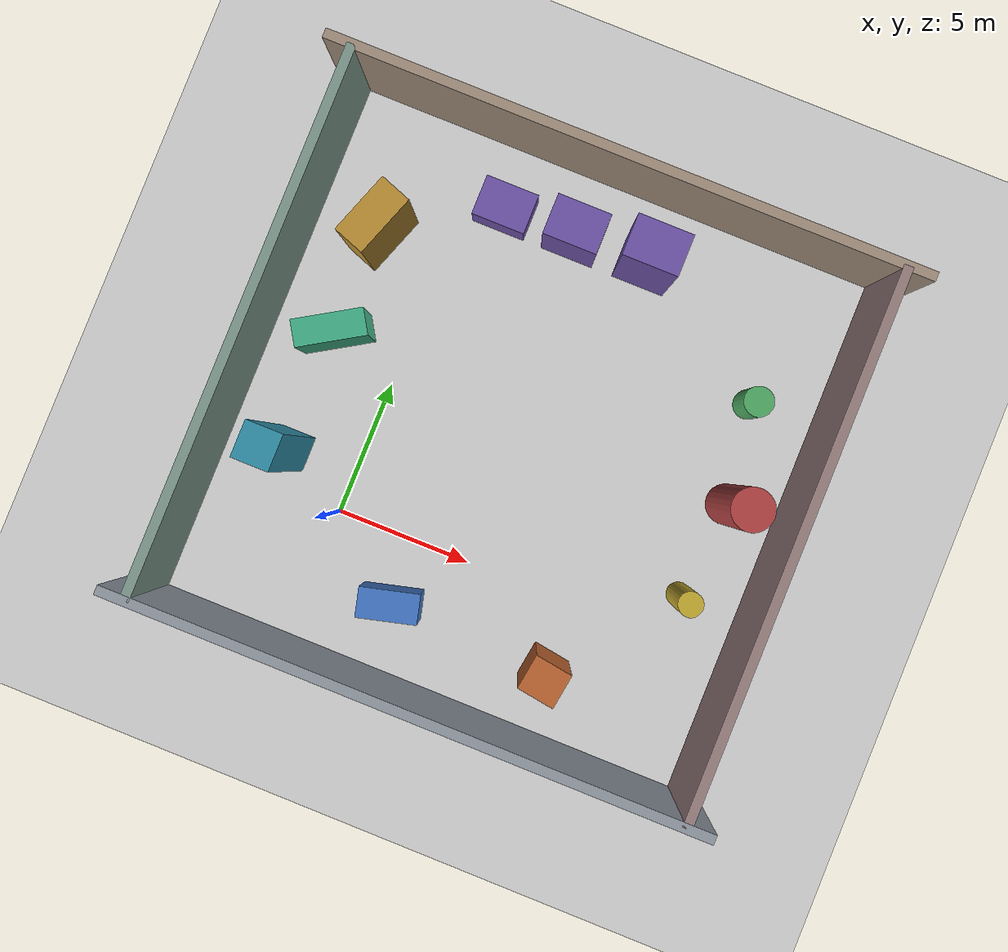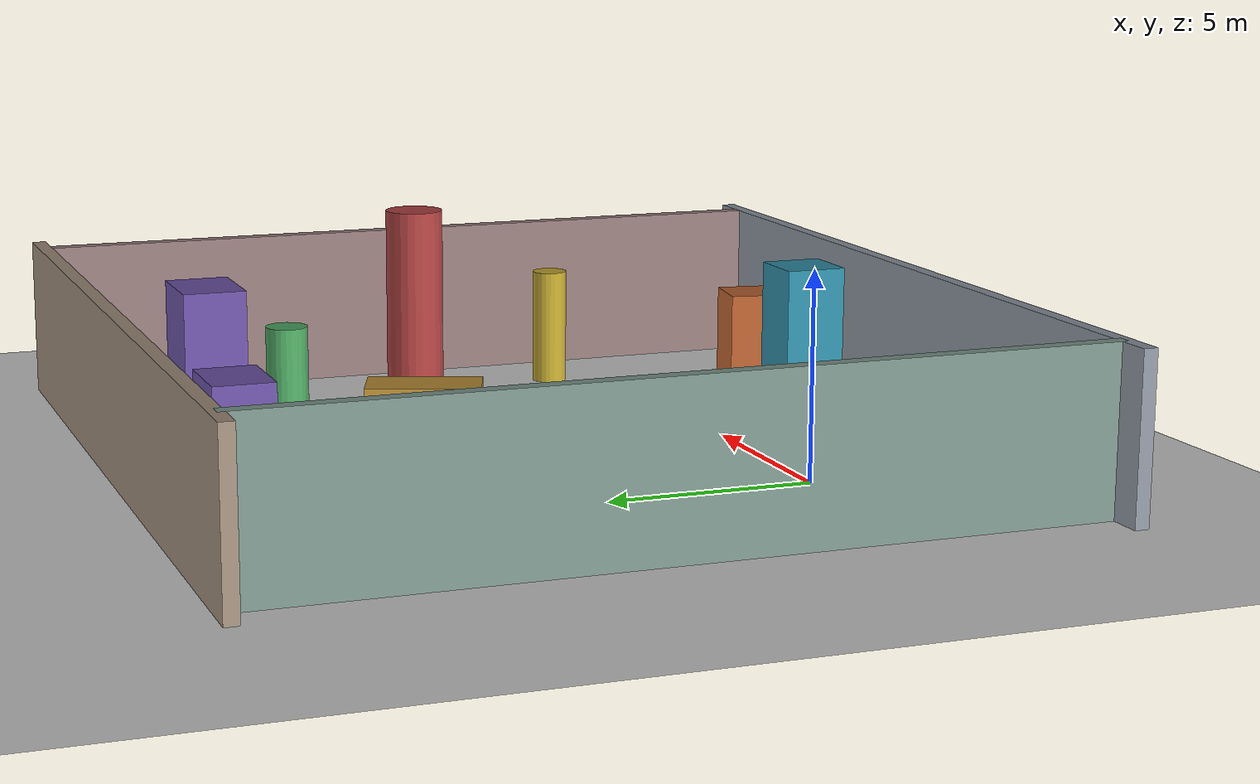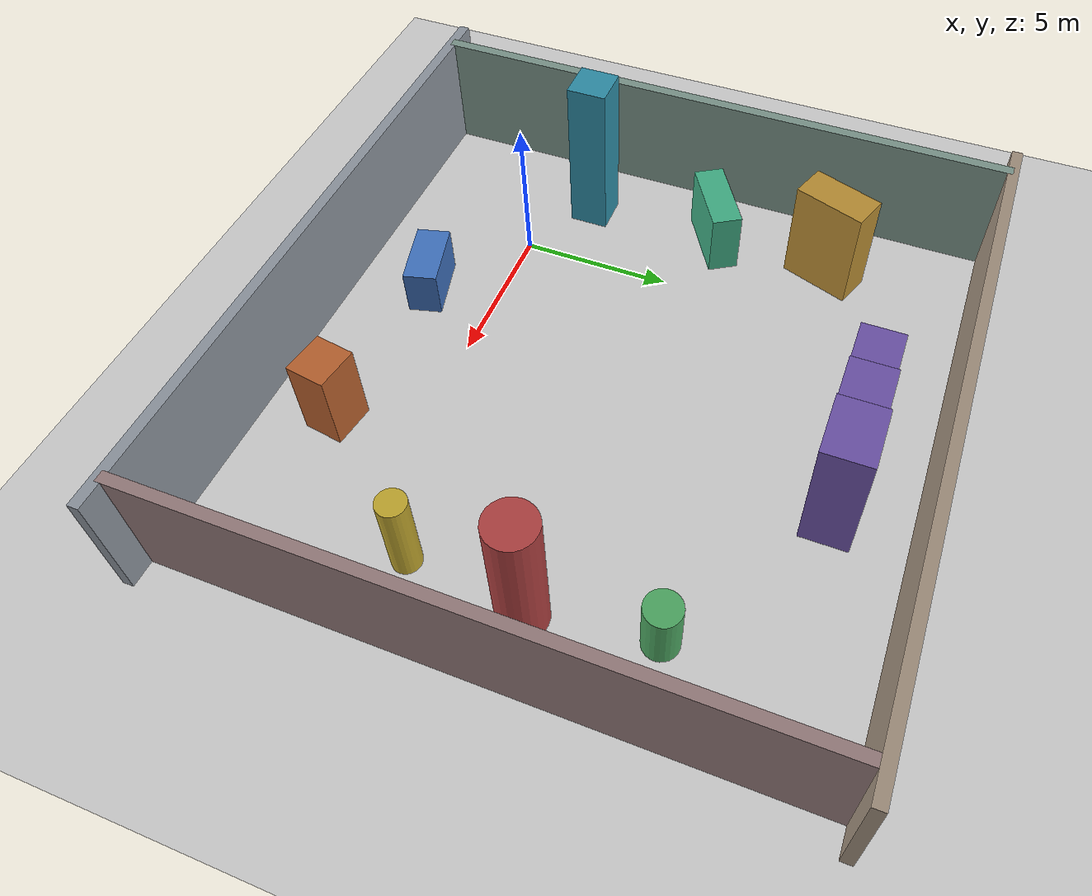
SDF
<?xml version="1.0" ?>
<sdf version="1.6">
  <world name="loop_closure_arena">
    <include><uri>model://sun</uri></include>
    <include><uri>model://ground_plane</uri></include>
    <physics name="default_physics" type="ode">
      <max_step_size>0.004</max_step_size>
      <real_time_factor>1.0</real_time_factor>
      <real_time_update_rate>250</real_time_update_rate>
    </physics>
    <scene>
      <ambient>0.45 0.45 0.45 1</ambient>
      <background>0.75 0.80 0.88 1</background>
      <shadows>true</shadows>
    </scene>

    <model name="asymmetric_loop_landmarks">
      <static>true</static>
      <link name="landmarks">
        <!-- Four boundary walls leave a large safety margin around the route. -->
        <collision name="wall_s_c"><pose>5 -5 2.0 0 0 0</pose><geometry><box><size>22 0.35 4</size></box></geometry></collision>
        <visual name="wall_s_v"><pose>5 -5 2.0 0 0 0</pose><geometry><box><size>22 0.35 4</size></box></geometry><material><ambient>0.55 0.58 0.62 1</ambient></material></visual>
        <collision name="wall_n_c"><pose>5 15 2.0 0 0 0</pose><geometry><box><size>22 0.35 4</size></box></geometry></collision>
        <visual name="wall_n_v"><pose>5 15 2.0 0 0 0</pose><geometry><box><size>22 0.35 4</size></box></geometry><material><ambient>0.62 0.55 0.48 1</ambient></material></visual>
        <collision name="wall_w_c"><pose>-5 5 2.0 0 0 0</pose><geometry><box><size>0.35 20 4</size></box></geometry></collision>
        <visual name="wall_w_v"><pose>-5 5 2.0 0 0 0</pose><geometry><box><size>0.35 20 4</size></box></geometry><material><ambient>0.48 0.58 0.54 1</ambient></material></visual>
        <collision name="wall_e_c"><pose>15 5 2.0 0 0 0</pose><geometry><box><size>0.35 20 4</size></box></geometry></collision>
        <visual name="wall_e_v"><pose>15 5 2.0 0 0 0</pose><geometry><box><size>0.35 20 4</size></box></geometry><material><ambient>0.58 0.48 0.48 1</ambient></material></visual>

        <!-- South: low boxes, kept outside the flight corridor. -->
        <collision name="south_box_1_c"><pose>3 -2.3 0.8 0 0 0.25</pose><geometry><box><size>2.2 1.1 1.6</size></box></geometry></collision>
        <visual name="south_box_1_v"><pose>3 -2.3 0.8 0 0 0.25</pose><geometry><box><size>2.2 1.1 1.6</size></box></geometry><material><ambient>0.25 0.45 0.75 1</ambient></material></visual>
        <collision name="south_box_2_c"><pose>9 -2.5 1.4 0 0 -0.15</pose><geometry><box><size>1.4 1.3 2.8</size></box></geometry></collision>
        <visual name="south_box_2_v"><pose>9 -2.5 1.4 0 0 -0.15</pose><geometry><box><size>1.4 1.3 2.8</size></box></geometry><material><ambient>0.72 0.38 0.18 1</ambient></material></visual>

        <!-- East: three cylinders with deliberately different radii/heights. -->
        <collision name="east_pillar_1_c"><pose>12.6 1.8 1.5 0 0 0</pose><geometry><cylinder><radius>0.45</radius><length>3.0</length></cylinder></geometry></collision>
        <visual name="east_pillar_1_v"><pose>12.6 1.8 1.5 0 0 0</pose><geometry><cylinder><radius>0.45</radius><length>3.0</length></cylinder></geometry><material><ambient>0.75 0.65 0.18 1</ambient></material></visual>
        <collision name="east_pillar_2_c"><pose>13.0 5.5 2.4 0 0 0</pose><geometry><cylinder><radius>0.75</radius><length>4.8</length></cylinder></geometry></collision>
        <visual name="east_pillar_2_v"><pose>13.0 5.5 2.4 0 0 0</pose><geometry><cylinder><radius>0.75</radius><length>4.8</length></cylinder></geometry><material><ambient>0.68 0.25 0.25 1</ambient></material></visual>
        <collision name="east_pillar_3_c"><pose>12.4 9.2 1.0 0 0 0</pose><geometry><cylinder><radius>0.55</radius><length>2.0</length></cylinder></geometry></collision>
        <visual name="east_pillar_3_v"><pose>12.4 9.2 1.0 0 0 0</pose><geometry><cylinder><radius>0.55</radius><length>2.0</length></cylinder></geometry><material><ambient>0.30 0.65 0.38 1</ambient></material></visual>

        <!-- North: a stepped skyline. -->
        <collision name="north_step_1_c"><pose>1.5 12.5 0.6 0 0 0</pose><geometry><box><size>2.0 1.5 1.2</size></box></geometry></collision>
        <visual name="north_step_1_v"><pose>1.5 12.5 0.6 0 0 0</pose><geometry><box><size>2.0 1.5 1.2</size></box></geometry><material><ambient>0.42 0.32 0.65 1</ambient></material></visual>
        <collision name="north_step_2_c"><pose>4.2 12.5 1.3 0 0 0</pose><geometry><box><size>2.0 1.5 2.6</size></box></geometry></collision>
        <visual name="north_step_2_v"><pose>4.2 12.5 1.3 0 0 0</pose><geometry><box><size>2.0 1.5 2.6</size></box></geometry><material><ambient>0.42 0.32 0.65 1</ambient></material></visual>
        <collision name="north_step_3_c"><pose>7.0 12.5 2.1 0 0 0</pose><geometry><box><size>2.0 1.5 4.2</size></box></geometry></collision>
        <visual name="north_step_3_v"><pose>7.0 12.5 2.1 0 0 0</pose><geometry><box><size>2.0 1.5 4.2</size></box></geometry><material><ambient>0.42 0.32 0.65 1</ambient></material></visual>

        <!-- West: slanted blocks and one tall landmark near the start/finish. -->
        <collision name="west_tower_c"><pose>-2.5 1.5 2.8 0 0 0</pose><geometry><box><size>1.3 1.3 5.6</size></box></geometry></collision>
        <visual name="west_tower_v"><pose>-2.5 1.5 2.8 0 0 0</pose><geometry><box><size>1.3 1.3 5.6</size></box></geometry><material><ambient>0.18 0.55 0.65 1</ambient></material></visual>
        <collision name="west_slant_1_c"><pose>-2.5 6.0 1.1 0 0 0.55</pose><geometry><box><size>2.6 1.0 2.2</size></box></geometry></collision>
        <visual name="west_slant_1_v"><pose>-2.5 6.0 1.1 0 0 0.55</pose><geometry><box><size>2.6 1.0 2.2</size></box></geometry><material><ambient>0.25 0.68 0.52 1</ambient></material></visual>
        <collision name="west_slant_2_c"><pose>-2.3 10.0 1.8 0 0 -0.35</pose><geometry><box><size>1.2 2.4 3.6</size></box></geometry></collision>
        <visual name="west_slant_2_v"><pose>-2.3 10.0 1.8 0 0 -0.35</pose><geometry><box><size>1.2 2.4 3.6</size></box></geometry><material><ambient>0.72 0.55 0.20 1</ambient></material></visual>
      </link>
    </model>
  </world>
</sdf>
